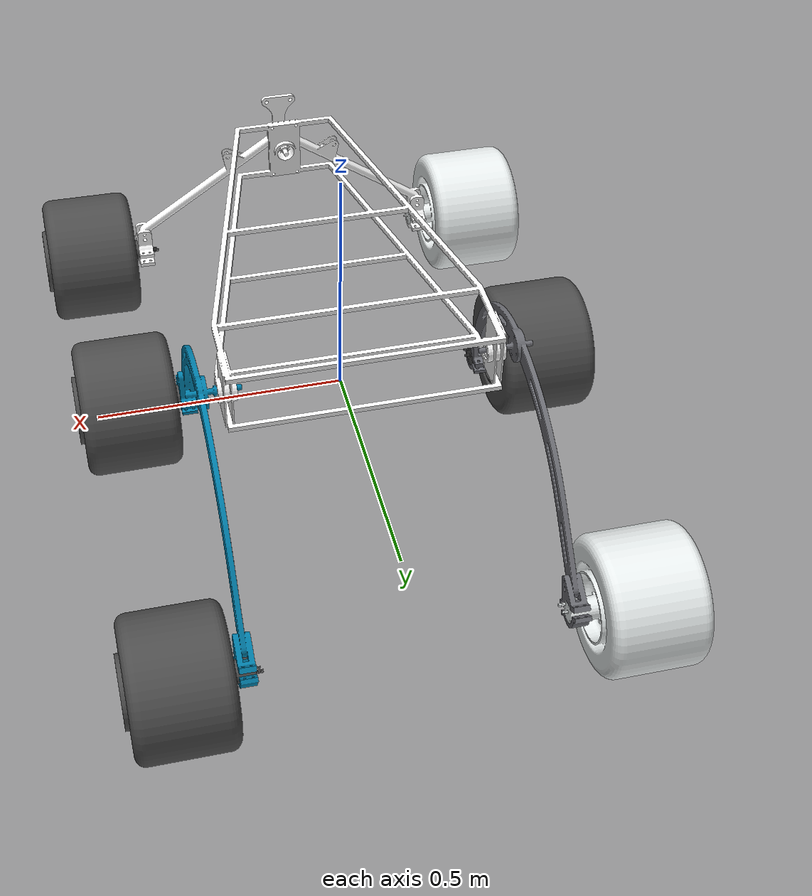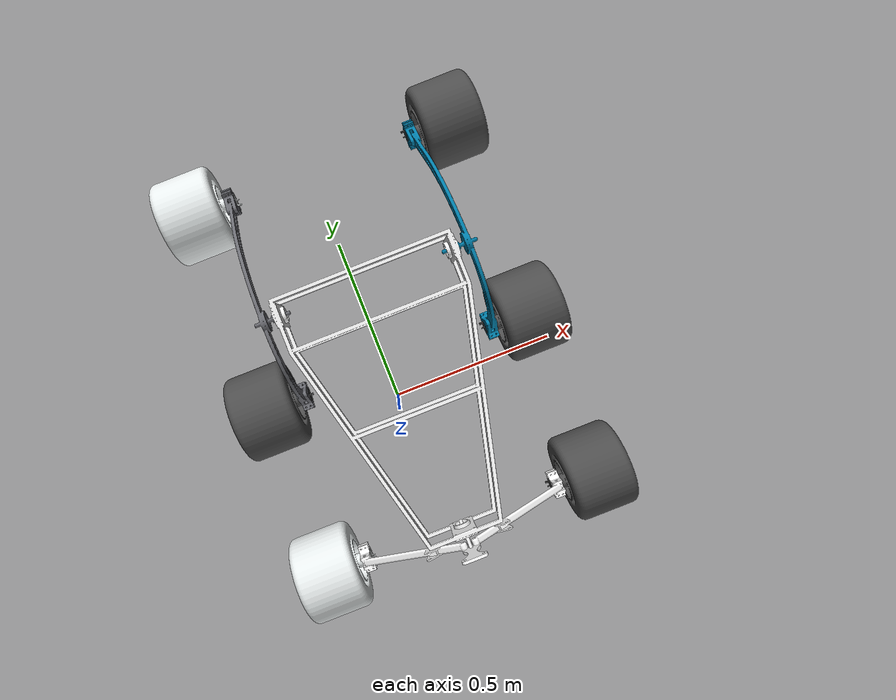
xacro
<?xml version="1.0" ?>
<!-- |    This document was autogenerated by xacro from pharous.urdf                   | -->
<!-- |    EDITING THIS FILE BY HAND IS NOT RECOMMENDED                                 | -->
<robot name="pharous" xmlns:xacro="http://www.ros.org/wiki/xacro">
  <link name="base_link">
    <inertial>
      <origin rpy="0 0 0" xyz="0.0342546676912177 0.3354450751551 -0.083772450023281"/>
      <mass value="1.113273878008"/>
      <inertia ixx="0.0919449282525187" ixy="-1.28190017999446E-08" ixz="-0.0008524825006297" iyy="0.125641050214363" iyz="7.41908627415724E-08" izz="0.0387236498936021"/>
    </inertial>
    <visual>
      <origin rpy="0 0 0" xyz="0 0 0"/>
      <geometry>
        <mesh filename="package://pharous/meshes/base_link.stl"/>
      </geometry>
      <material name="">
        <color rgba="0.956862745098039 0.956862745098039 0.956862745098039 1"/>
      </material>
    </visual>
    <collision>
      <origin rpy="0 0 0" xyz="0 0 0"/>
      <geometry>
        <mesh filename="package://pharous/meshes/base_link.stl"/>
      </geometry>
    </collision>
  </link>
  <link name="bogie_right">
    <inertial>
      <origin rpy="0 0 0" xyz="-0.0669560839961428 -0.103859140261983 -0.0721259138374255"/>
      <mass value="1.29013017012984"/>
      <inertia ixx="0.012247863499338" ixy="-0.00460535126807572" ixz="-0.000248269495872662" iyy="0.0646345241708514" iyz="-0.00038510427841949" izz="0.0765409420982121"/>
    </inertial>
    <visual>
      <origin rpy="0 0 0" xyz="0 0 0"/>
      <geometry>
        <mesh filename="package://pharous/meshes/bogie_right.stl"/>
      </geometry>
      <material name="">
        <color rgba="0 0.490196078431373 0.658823529411765 1"/>
      </material>
    </visual>
    <collision>
      <origin rpy="0 0 0" xyz="0 0 0"/>
      <geometry>
        <mesh filename="package://pharous/meshes/bogie_right.stl"/>
      </geometry>
    </collision>
  </link>
  <joint name="joint_bogie_right" type="revolute">
    <origin rpy="1.5707963267949 -0.12363211096913 -1.5707963267949" xyz="0.25325 0.329999999999998 0.335441268817448"/>
    <parent link="base_link"/>
    <child link="bogie_right"/>
    <axis xyz="0 0 1"/>
    <limit effort="1000" lower="0.0" upper="0.0" velocity="0.5"/>
  </joint>
  <link name="L1">
    <inertial>
      <origin rpy="0 0 0" xyz="4.65395300408566E-07 3.74102978206725E-07 0.142893685242714"/>
      <mass value="9.83394958959218"/>
      <inertia ixx="0.0682932721667935" ixy="-1.04357400332322E-07" ixz="-7.52644885612228E-08" iyy="0.0682932576559284" iyz="-2.07222985212337E-07" izz="0.0885665405643924"/>
    </inertial>
    <visual>
      <origin rpy="0 0 0" xyz="0 0 0"/>
      <geometry>
        <mesh filename="package://pharous/meshes/L1.stl"/>
      </geometry>
      <material name="">
        <color rgba="0.298039215686275 0.298039215686275 0.298039215686275 1"/>
      </material>
    </visual>
    <collision>
      <origin rpy="0 0 0" xyz="0 0 0"/>
      <geometry>
        <mesh filename="package://pharous/meshes/L1.stl"/>
      </geometry>
    </collision>
  </link>
  <joint name="JL1" type="continuous">
    <origin rpy="3.14159265358979 0 0.554422805500324" xyz="-0.426102782676879 -0.228841186139171 -0.0475000000000031"/>
    <parent link="bogie_right"/>
    <child link="L1"/>
    <axis xyz="0 0 1"/>
  </joint>
  <link name="L2">
    <inertial>
      <origin rpy="0 0 0" xyz="4.65395317159056E-07 3.74102974765034E-07 0.142893685242717"/>
      <mass value="9.83394958959217"/>
      <inertia ixx="0.0682932721667934" ixy="-1.04357400325383E-07" ixz="-7.52644885575195E-08" iyy="0.0682932576559283" iyz="-2.07222985208249E-07" izz="0.0885665405643923"/>
    </inertial>
    <visual>
      <origin rpy="0 0 0" xyz="0 0 0"/>
      <geometry>
        <mesh filename="package://pharous/meshes/L2.stl"/>
      </geometry>
      <material name="">
        <color rgba="0.298039215686275 0.298039215686275 0.298039215686275 1"/>
      </material>
    </visual>
    <collision>
      <origin rpy="0 0 0" xyz="0 0 0"/>
      <geometry>
        <mesh filename="package://pharous/meshes/L2.stl"/>
      </geometry>
    </collision>
  </link>
  <joint name="JL2" type="continuous">
    <origin rpy="3.14159265358979 0 0.554422805500329" xyz="0.202139588137216 -0.239980392463256 -0.0474999999999998"/>
    <parent link="bogie_right"/>
    <child link="L2"/>
    <axis xyz="0 0 1"/>
  </joint>
  <link name="bogie_left">
    <inertial>
      <origin rpy="0 0 0" xyz="-0.0721259138453373 -0.10403146863883 -0.0666881392430735"/>
      <mass value="1.29013017003635"/>
      <inertia ixx="0.0765409439329024" ixy="-0.000385742991449256" ixz="-0.000247275969546821" iyy="0.064610433326066" iyz="-0.00474032739452632" izz="0.0122719561789334"/>
    </inertial>
    <visual>
      <origin rpy="0 0 0" xyz="0 0 0"/>
      <geometry>
        <mesh filename="package://pharous/meshes/bogie_left.stl"/>
      </geometry>
      <material name="">
        <color rgba="0.415686274509804 0.419607843137255 0.443137254901961 1"/>
      </material>
    </visual>
    <collision>
      <origin rpy="0 0 0" xyz="0 0 0"/>
      <geometry>
        <mesh filename="package://pharous/meshes/bogie_left.stl"/>
      </geometry>
    </collision>
  </link>
  <joint name="joint_bogie_left" type="revolute">
    <origin rpy="1.47091476208721 0 0" xyz="-0.17925 0.330000000000001 0.335441268817444"/>
    <parent link="base_link"/>
    <child link="bogie_left"/>
    <axis xyz="0 0 1"/>
    <limit effort="1000" lower="0.0" upper="0.0" velocity="0.5"/>
  </joint>
  <link name="L4">
    <inertial>
      <origin rpy="0 0 0" xyz="-0.142893685242717 5.04753342955855E-07 -3.19013944261037E-07"/>
      <mass value="9.83394958959217"/>
      <inertia ixx="0.0885665405643923" ixy="9.82389854611306E-08" ixz="-1.97370743941687E-07" iyy="0.0682932485055299" iyz="1.03314844138169E-07" izz="0.0682932813171918"/>
    </inertial>
    <visual>
      <origin rpy="0 0 0" xyz="0 0 0"/>
      <geometry>
        <mesh filename="package://pharous/meshes/L4.stl"/>
      </geometry>
      <material name="">
        <color rgba="0.901960784313726 0.92156862745098 0.92156862745098 1"/>
      </material>
    </visual>
    <collision>
      <origin rpy="0 0 0" xyz="0 0 0"/>
      <geometry>
        <mesh filename="package://pharous/meshes/L4.stl"/>
      </geometry>
    </collision>
  </link>
  <joint name="JL4" type="continuous">
    <origin rpy="-0.551349563537748 0 0" xyz="-0.0474999999999969 -0.229938882892577 -0.425511472966853"/>
    <parent link="bogie_left"/>
    <child link="L4"/>
    <axis xyz="1 0 0"/>
  </joint>
  <link name="L5">
    <inertial>
      <origin rpy="0 0 0" xyz="4.65395320017881E-07 3.74102971961721E-07 0.142893685242717"/>
      <mass value="9.83394958959217"/>
      <inertia ixx="0.0682932721667935" ixy="-1.04357400328853E-07" ixz="-7.52644885488455E-08" iyy="0.0682932576559283" iyz="-2.07222985200116E-07" izz="0.0885665405643924"/>
    </inertial>
    <visual>
      <origin rpy="0 0 0" xyz="0 0 0"/>
      <geometry>
        <mesh filename="package://pharous/meshes/L5.stl"/>
      </geometry>
      <material name="">
        <color rgba="0.298039215686275 0.298039215686275 0.298039215686275 1"/>
      </material>
    </visual>
    <collision>
      <origin rpy="0 0 0" xyz="0 0 0"/>
      <geometry>
        <mesh filename="package://pharous/meshes/L5.stl"/>
      </geometry>
    </collision>
  </link>
  <joint name="JL5" type="continuous">
    <origin rpy="1.5707963267949 1.40250069895209 -1.5707963267949" xyz="-0.0474999999999992 -0.239458703768008 0.202757524863305"/>
    <parent link="bogie_left"/>
    <child link="L5"/>
    <axis xyz="0 0 -1"/>
  </joint>
  <link name="rocker">
    <inertial>
      <origin rpy="0 0 0" xyz="-0.0764663320101683 -0.0681597549812487 -0.0885867186495815"/>
      <mass value="1.16052851923532"/>
      <inertia ixx="0.0284119803572561" ixy="-3.87840124759418E-05" ixz="0.0190720314027776" iyy="0.0618777051647883" iyz="-4.53122876130645E-05" izz="0.0340446715431136"/>
    </inertial>
    <visual>
      <origin rpy="0 0 0" xyz="0 0 0"/>
      <geometry>
        <mesh filename="package://pharous/meshes/rocker.stl"/>
      </geometry>
      <material name="">
        <color rgba="1 1 1 1"/>
      </material>
    </visual>
    <collision>
      <origin rpy="0 0 0" xyz="0 0 0"/>
      <geometry>
        <mesh filename="package://pharous/meshes/rocker.stl"/>
      </geometry>
    </collision>
  </link>
  <joint name="joint_rocker" type="continuous">
    <origin rpy="-5.8866100191415E-06 -0.720207706851822 -1.19782853777336E-15" xyz="0.0378798906937743 -0.345346641597827 0.335441268817443"/>
    <parent link="base_link"/>
    <child link="rocker"/>
    <axis xyz="0 -0.999999999942843 0"/>
  </joint>
  <link name="L3">
    <inertial>
      <origin rpy="0 0 0" xyz="4.65396442939081E-07 3.74102528399867E-07 0.14526873547498"/>
      <mass value="9.83394958974638"/>
      <inertia ixx="0.0682932721679839" ixy="-1.04357458008408E-07" ixz="-7.52639820312122E-08" iyy="0.0682932576570302" iyz="-2.07223127128788E-07" izz="0.0885665405644126"/>
    </inertial>
    <visual>
      <origin rpy="0 0 0" xyz="0 0 0"/>
      <geometry>
        <mesh filename="package://pharous/meshes/L3.stl"/>
      </geometry>
      <material name="">
        <color rgba="0.298039215686275 0.298039215686275 0.298039215686275 1"/>
      </material>
    </visual>
    <collision>
      <origin rpy="0 0 0" xyz="0 0 0"/>
      <geometry>
        <mesh filename="package://pharous/meshes/L3.stl"/>
      </geometry>
    </collision>
  </link>
  <joint name="JL3" type="continuous">
    <origin rpy="-2.46414677175767 -0.581695045538897 -0.97157395381248" xyz="0.0424633946890276 -0.0689975900377624 -0.368483124565098"/>
    <parent link="rocker"/>
    <child link="L3"/>
    <axis xyz="0 0 0.999999999920349"/>
  </joint>
  <link name="L6">
    <inertial>
      <origin rpy="0 0 0" xyz="-0.143781949637535 1.75165204541194E-06 -1.55986339539504E-08"/>
      <mass value="9.83394958946774"/>
      <inertia ixx="0.0885665405636291" ixy="-7.75739712121556E-08" ixz="-2.40151286603818E-07" iyy="0.0682932485041918" iyz="1.03316712740664E-07" izz="0.0682932813170207"/>
    </inertial>
    <visual>
      <origin rpy="0 0 0" xyz="0 0 0"/>
      <geometry>
        <mesh filename="package://pharous/meshes/L6.stl"/>
      </geometry>
      <material name="">
        <color rgba="0.901960784313726 0.92156862745098 0.92156862745098 1"/>
      </material>
    </visual>
    <collision>
      <origin rpy="0 0 0" xyz="0 0 0"/>
      <geometry>
        <mesh filename="package://pharous/meshes/L6.stl"/>
      </geometry>
    </collision>
  </link>
  <joint name="JL6" type="continuous">
    <origin rpy="-0.238689468369677 0.715250272984291 5.11369373227962E-06" xyz="-0.371856270198045 -0.0689948104164395 -0.0108463900906541"/>
    <parent link="rocker"/>
    <child link="L6"/>
    <axis xyz="0.99999999996017 0 0"/>
  </joint>
  <gazebo>
  <plugin name="skid_steer_drive_controller" filename="libgazebo_ros_skid_steer_drive.so">
    <updateRate>100.0</updateRate>
    <robotNamespace>/</robotNamespace>
    <leftFrontJoint>JL4</leftFrontJoint>
    <rightFrontJoint>JL1</rightFrontJoint>
    <leftRearJoint>JL6</leftRearJoint>
    <rightRearJoint>JL3</rightRearJoint>
    <rightMiddleJoint>JL2</rightMiddleJoint>
    <leftMiddleJoint>JL5</leftMiddleJoint>
    <wheelSeparation>0.7</wheelSeparation>
    <wheelDiameter>0.3</wheelDiameter>
    <robotBaseFrame>base_link</robotBaseFrame>
    <torque>100</torque>
    <topicName>cmd_vel</topicName>
    <broadcastTF>true</broadcastTF>
  </plugin>
</gazebo>
</robot>
